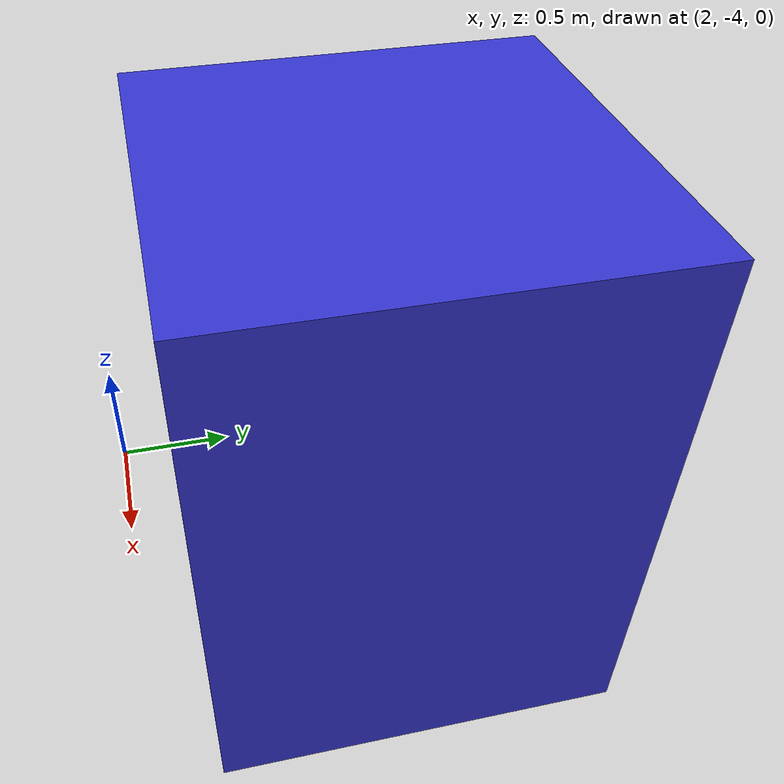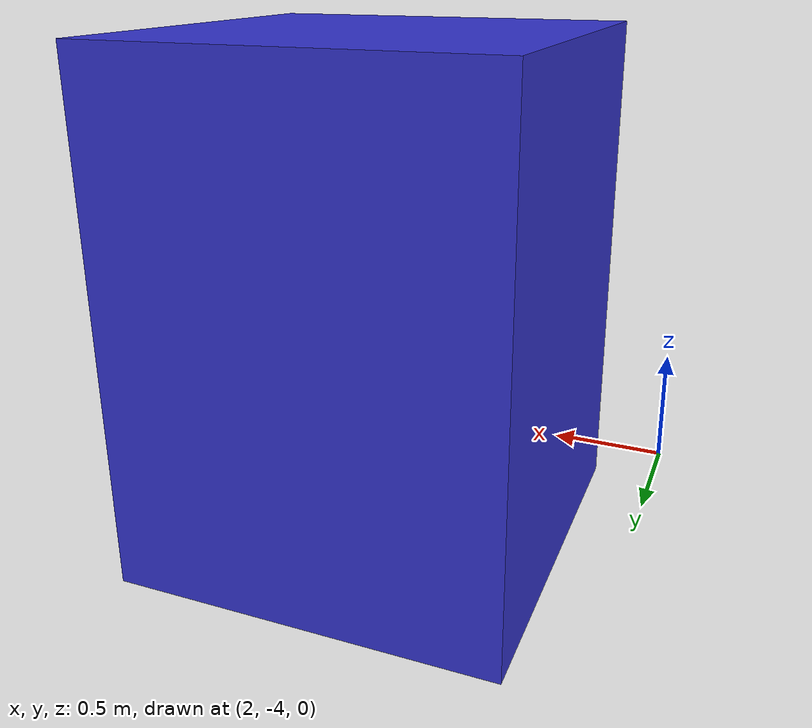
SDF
<?xml version="1.0"?>
<sdf version="1.7">
  <model name="box_3">
    <pose>3 -3 1 0 0 0</pose>
    <link name="link">
      <collision name="collision">
        <geometry>
          <box>
            <size>1.5 1.5 2</size>
          </box>
        </geometry>
      </collision>
      <visual name="visual">
        <geometry>
          <box>
            <size>1.5 1.5 2</size>
          </box>
        </geometry>
        <material>
          <ambient>0.2 0.2 0.8 1</ambient>
          <diffuse>0.2 0.2 0.8 1</diffuse>
        </material>
      </visual>
    </link>
  </model>
</sdf>
